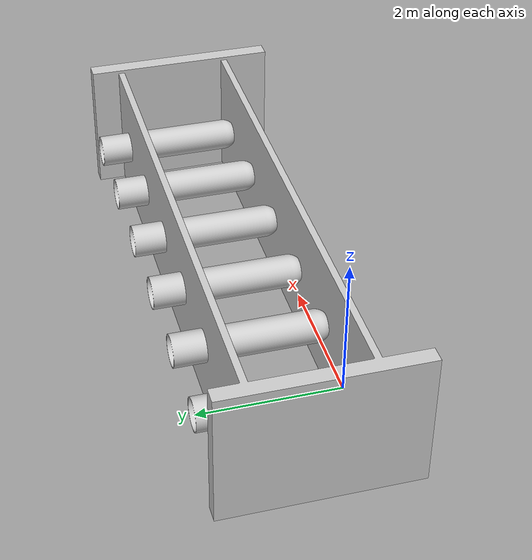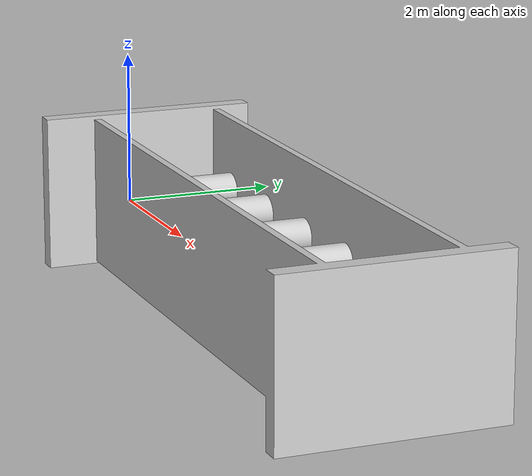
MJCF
<mujoco model="tnr">
  <default>
    <default class="visual">
      <geom group="2" type="mesh" contype="0" conaffinity="0"/>
    </default>
    <default class="collision">
      <geom group="3" type="mesh"/>
    </default>
  </default>
  <asset>
    <material name="2" specular="0.5" shininess="0.36" rgba="0.800000 0.800000 0.800000 1.000000"/>
    <material name="Material" specular="0.5" shininess="0.25" rgba="0.800000 0.800000 0.800000 1.000000"/>
    <mesh file="tnr_0.obj"/>
    <mesh file="tnr_1.obj"/>
    <mesh file="tnr_collision_0.obj"/>
    <mesh file="tnr_collision_1.obj"/>
    <mesh file="tnr_collision_2.obj"/>
    <mesh file="tnr_collision_3.obj"/>
    <mesh file="tnr_collision_4.obj"/>
    <mesh file="tnr_collision_5.obj"/>
    <mesh file="tnr_collision_6.obj"/>
    <mesh file="tnr_collision_7.obj"/>
    <mesh file="tnr_collision_8.obj"/>
    <mesh file="tnr_collision_9.obj"/>
    <mesh file="tnr_collision_10.obj"/>
    <mesh file="tnr_collision_11.obj"/>
    <mesh file="tnr_collision_12.obj"/>
    <mesh file="tnr_collision_13.obj"/>
    <mesh file="tnr_collision_14.obj"/>
    <mesh file="tnr_collision_15.obj"/>
    <mesh file="tnr_collision_16.obj"/>
    <mesh file="tnr_collision_17.obj"/>
    <mesh file="tnr_collision_18.obj"/>
    <mesh file="tnr_collision_19.obj"/>
    <mesh file="tnr_collision_20.obj"/>
    <mesh file="tnr_collision_21.obj"/>
  </asset>
  <worldbody>
    <body name="tnr">
      <geom mesh="tnr_0" material="2" class="visual"/>
      <geom mesh="tnr_1" material="Material" class="visual"/>
      <geom mesh="tnr_collision_0" rgba="0.6161389370909456 0.3210971689062807 0.08090263346346793 1" class="collision"/>
      <geom mesh="tnr_collision_1" rgba="0.4937340116013187 0.6405372402517951 0.24911823284898715 1" class="collision"/>
      <geom mesh="tnr_collision_2" rgba="0.28490758552085715 0.9863671394805186 0.3310885412198671 1" class="collision"/>
      <geom mesh="tnr_collision_3" rgba="0.07468348603606989 0.13335618446978215 0.884037257547161 1" class="collision"/>
      <geom mesh="tnr_collision_4" rgba="0.22782378734905462 0.7554713031518029 0.6959473845768183 1" class="collision"/>
      <geom mesh="tnr_collision_5" rgba="0.48408894181565565 0.44973603722248356 0.9636465801591376 1" class="collision"/>
      <geom mesh="tnr_collision_6" rgba="0.5682313752323631 0.42731262147403337 0.19116802777284614 1" class="collision"/>
      <geom mesh="tnr_collision_7" rgba="0.7580492337588404 0.9973920230234545 0.6888180304727956 1" class="collision"/>
      <geom mesh="tnr_collision_8" rgba="0.4479084753107865 0.06839062006258301 0.7090321387975203 1" class="collision"/>
      <geom mesh="tnr_collision_9" rgba="0.9712271964966597 0.31585481087848066 0.3617850094034045 1" class="collision"/>
      <geom mesh="tnr_collision_10" rgba="0.1736657334961479 0.2586182038055086 0.4358237151457529 1" class="collision"/>
      <geom mesh="tnr_collision_11" rgba="0.05651298132525984 0.24400715720995947 0.8323555299771903 1" class="collision"/>
      <geom mesh="tnr_collision_12" rgba="0.7318120848157322 0.9973467181457266 0.6762484611325753 1" class="collision"/>
      <geom mesh="tnr_collision_13" rgba="0.9344111789657131 0.09396228954171859 0.4633501488167898 1" class="collision"/>
      <geom mesh="tnr_collision_14" rgba="0.02796913780811594 0.7599385063117912 0.4004008931796944 1" class="collision"/>
      <geom mesh="tnr_collision_15" rgba="0.40778399965853696 0.15065058612773286 0.858032319938857 1" class="collision"/>
      <geom mesh="tnr_collision_16" rgba="0.5074799595628346 0.7368567894183528 0.11830249678335547 1" class="collision"/>
      <geom mesh="tnr_collision_17" rgba="0.42146258728704267 0.13414238234332942 0.8146027557533507 1" class="collision"/>
      <geom mesh="tnr_collision_18" rgba="0.34088243051791367 0.7071987990341823 0.19631042735839743 1" class="collision"/>
      <geom mesh="tnr_collision_19" rgba="0.9428977645497031 0.5689207697315971 0.48195364021549925 1" class="collision"/>
      <geom mesh="tnr_collision_20" rgba="0.1552939551863114 0.3819516798060053 0.10945965090769283 1" class="collision"/>
      <geom mesh="tnr_collision_21" rgba="0.027093508280564005 0.9877072521889732 0.9261842823421099 1" class="collision"/>
    </body>
  </worldbody>
</mujoco>
